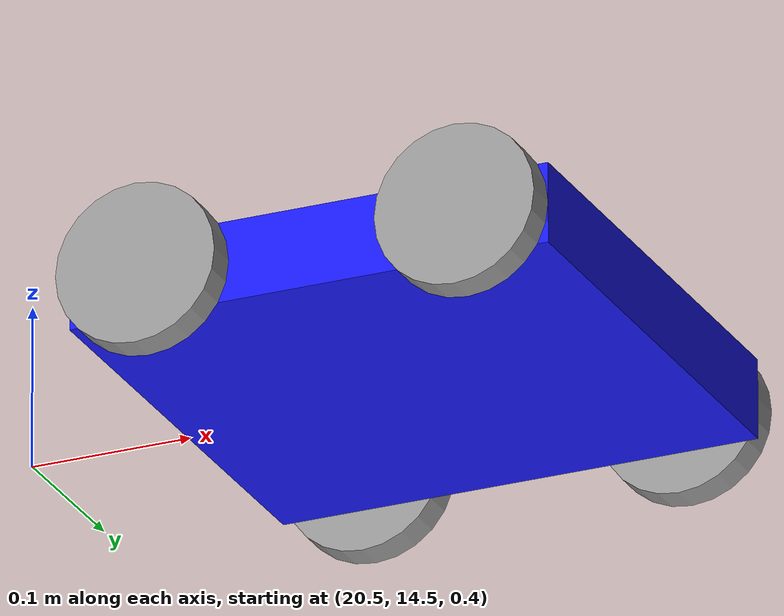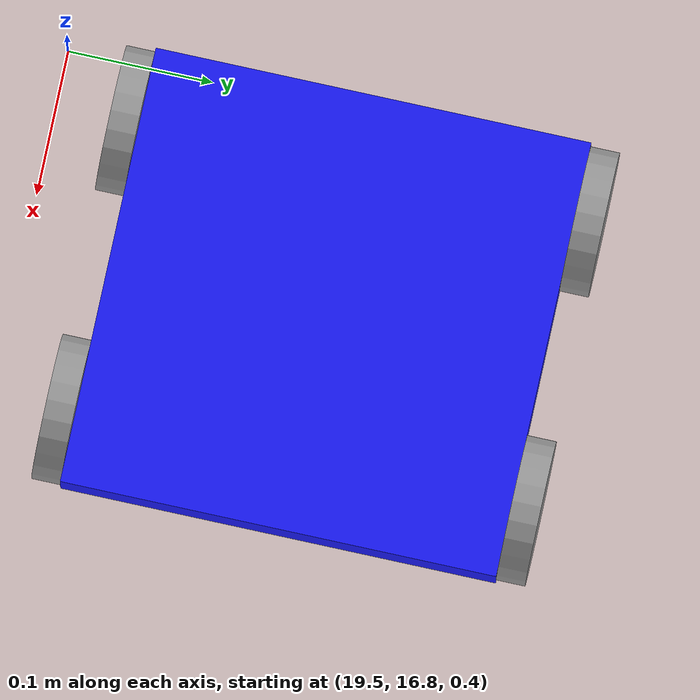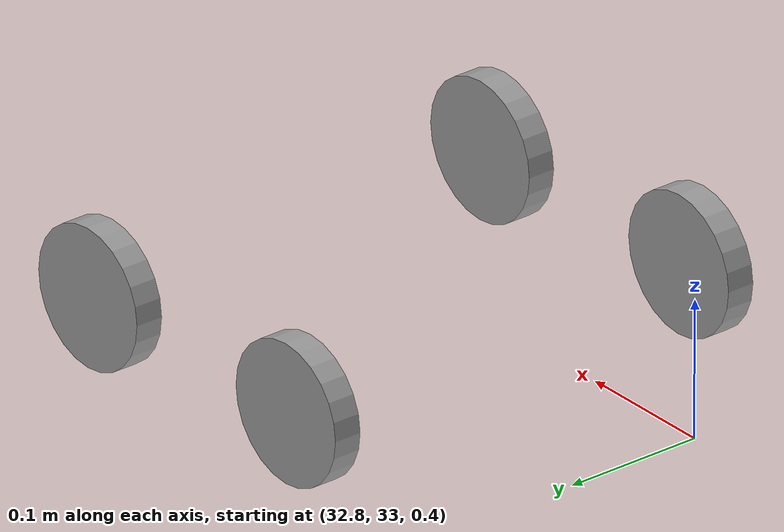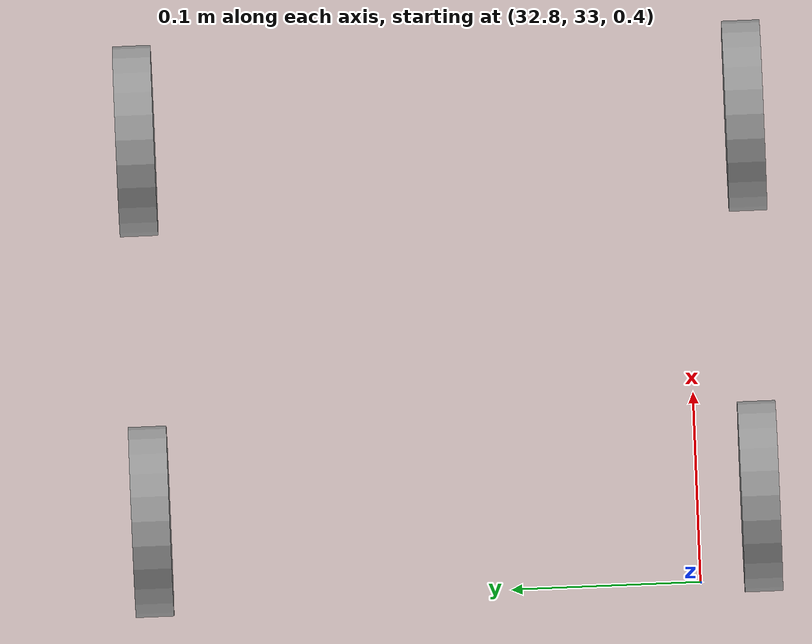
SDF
<?xml version='1.0'?>
<sdf version='1.6'>
  <model name='robot1'>
    <link name='link_5'>
      <pose frame=''>32.8439 32.9677 0.5 1.5707 -0 0</pose>
      <inertial>
        <mass>1</mass>
        <inertia>
          <ixx>0.145833</ixx>
          <ixy>0</ixy>
          <ixz>0</ixz>
          <iyy>0.145833</iyy>
          <iyz>0</iyz>
          <izz>0.125</izz>
        </inertia>
        <pose frame=''>0 0 0 0 -0 0</pose>
      </inertial>
      <gravity>1</gravity>
      <self_collide>0</self_collide>
      <kinematic>0</kinematic>
      <visual name='visual'>
        <pose frame=''>0 0 0 0 -0 0</pose>
        <geometry>
          <cylinder>
            <radius>0.05</radius>
            <length>0.02</length>
          </cylinder>
        </geometry>
        <material>
          <lighting>1</lighting>
          <script>
            <uri>file://media/materials/scripts/gazebo.material</uri>
            <name>Gazebo/Grey</name>
          </script>
          <shader type='pixel'>
            <normal_map>__default__</normal_map>
          </shader>
          <ambient>0.3 0.3 0.3 1</ambient>
          <diffuse>0.7 0.7 0.7 1</diffuse>
          <specular>0.01 0.01 0.01 1</specular>
          <emissive>0 0 0 1</emissive>
        </material>
        <transparency>0</transparency>
        <cast_shadows>1</cast_shadows>
      </visual>
      <collision name='collision'>
        <laser_retro>0</laser_retro>
        <max_contacts>10</max_contacts>
        <pose frame=''>0 0 0 0 -0 0</pose>
        <geometry>
          <cylinder>
            <radius>0.05</radius>
            <length>0.02</length>
          </cylinder>
        </geometry>
        <surface>
          <friction>
            <ode>
              <mu>1</mu>
              <mu2>1</mu2>
              <fdir1>0 0 0</fdir1>
              <slip1>0</slip1>
              <slip2>0</slip2>
            </ode>
            <torsional>
              <coefficient>1</coefficient>
              <patch_radius>0</patch_radius>
              <surface_radius>0</surface_radius>
              <use_patch_radius>1</use_patch_radius>
              <ode>
                <slip>0</slip>
              </ode>
            </torsional>
          </friction>
          <bounce>
            <restitution_coefficient>0</restitution_coefficient>
            <threshold>1e+06</threshold>
          </bounce>
          <contact>
            <collide_without_contact>0</collide_without_contact>
            <collide_without_contact_bitmask>1</collide_without_contact_bitmask>
            <collide_bitmask>1</collide_bitmask>
            <ode>
              <soft_cfm>0</soft_cfm>
              <soft_erp>0.2</soft_erp>
              <kp>1e+13</kp>
              <kd>1</kd>
              <max_vel>0.01</max_vel>
              <min_depth>0</min_depth>
            </ode>
            <bullet>
              <split_impulse>1</split_impulse>
              <split_impulse_penetration_threshold>-0.01</split_impulse_penetration_threshold>
              <soft_cfm>0</soft_cfm>
              <soft_erp>0.2</soft_erp>
              <kp>1e+13</kp>
              <kd>1</kd>
            </bullet>
          </contact>
        </surface>
      </collision>
    </link>
    <link name='link_5_clone'>
      <pose frame=''>32.8439 33.2877 0.5 1.5707 -0 0</pose>
      <inertial>
        <mass>1</mass>
        <inertia>
          <ixx>0.145833</ixx>
          <ixy>0</ixy>
          <ixz>0</ixz>
          <iyy>0.145833</iyy>
          <iyz>0</iyz>
          <izz>0.125</izz>
        </inertia>
        <pose frame=''>0 0 0 0 -0 0</pose>
      </inertial>
      <self_collide>0</self_collide>
      <kinematic>0</kinematic>
      <visual name='visual'>
        <pose frame=''>0 0 0 0 -0 0</pose>
        <geometry>
          <cylinder>
            <radius>0.05</radius>
            <length>0.02</length>
          </cylinder>
        </geometry>
        <material>
          <lighting>1</lighting>
          <script>
            <uri>file://media/materials/scripts/gazebo.material</uri>
            <name>Gazebo/Grey</name>
          </script>
          <shader type='pixel'>
            <normal_map>__default__</normal_map>
          </shader>
          <ambient>0.3 0.3 0.3 1</ambient>
          <diffuse>0.7 0.7 0.7 1</diffuse>
          <specular>0.01 0.01 0.01 1</specular>
          <emissive>0 0 0 1</emissive>
        </material>
        <transparency>0</transparency>
        <cast_shadows>1</cast_shadows>
      </visual>
      <collision name='collision'>
        <laser_retro>0</laser_retro>
        <max_contacts>10</max_contacts>
        <pose frame=''>0 0 0 0 -0 0</pose>
        <geometry>
          <cylinder>
            <radius>0.05</radius>
            <length>0.02</length>
          </cylinder>
        </geometry>
        <surface>
          <friction>
            <ode>
              <mu>1</mu>
              <mu2>1</mu2>
              <fdir1>0 0 0</fdir1>
              <slip1>0</slip1>
              <slip2>0</slip2>
            </ode>
            <torsional>
              <coefficient>1</coefficient>
              <patch_radius>0</patch_radius>
              <surface_radius>0</surface_radius>
              <use_patch_radius>1</use_patch_radius>
              <ode>
                <slip>0</slip>
              </ode>
            </torsional>
          </friction>
          <bounce>
            <restitution_coefficient>0</restitution_coefficient>
            <threshold>1e+06</threshold>
          </bounce>
          <contact>
            <collide_without_contact>0</collide_without_contact>
            <collide_without_contact_bitmask>1</collide_without_contact_bitmask>
            <collide_bitmask>1</collide_bitmask>
            <ode>
              <soft_cfm>0</soft_cfm>
              <soft_erp>0.2</soft_erp>
              <kp>1e+13</kp>
              <kd>1</kd>
              <max_vel>0.01</max_vel>
              <min_depth>0</min_depth>
            </ode>
            <bullet>
              <split_impulse>1</split_impulse>
              <split_impulse_penetration_threshold>-0.01</split_impulse_penetration_threshold>
              <soft_cfm>0</soft_cfm>
              <soft_erp>0.2</soft_erp>
              <kp>1e+13</kp>
              <kd>1</kd>
            </bullet>
          </contact>
        </surface>
      </collision>
    </link>
    <link name='link_5_clone_0'>
      <pose frame=''>33.0439 32.9677 0.5 1.5707 -0 0</pose>
      <inertial>
        <mass>1</mass>
        <inertia>
          <ixx>0.145833</ixx>
          <ixy>0</ixy>
          <ixz>0</ixz>
          <iyy>0.145833</iyy>
          <iyz>0</iyz>
          <izz>0.125</izz>
        </inertia>
        <pose frame=''>0 0 0 0 -0 0</pose>
      </inertial>
      <self_collide>0</self_collide>
      <kinematic>0</kinematic>
      <visual name='visual'>
        <pose frame=''>0 0 0 0 -0 0</pose>
        <geometry>
          <cylinder>
            <radius>0.05</radius>
            <length>0.02</length>
          </cylinder>
        </geometry>
        <material>
          <lighting>1</lighting>
          <script>
            <uri>file://media/materials/scripts/gazebo.material</uri>
            <name>Gazebo/Grey</name>
          </script>
          <shader type='pixel'>
            <normal_map>__default__</normal_map>
          </shader>
          <ambient>0.3 0.3 0.3 1</ambient>
          <diffuse>0.7 0.7 0.7 1</diffuse>
          <specular>0.01 0.01 0.01 1</specular>
          <emissive>0 0 0 1</emissive>
        </material>
        <transparency>0</transparency>
        <cast_shadows>1</cast_shadows>
      </visual>
      <collision name='collision'>
        <laser_retro>0</laser_retro>
        <max_contacts>10</max_contacts>
        <pose frame=''>0 0 0 0 -0 0</pose>
        <geometry>
          <cylinder>
            <radius>0.05</radius>
            <length>0.02</length>
          </cylinder>
        </geometry>
        <surface>
          <friction>
            <ode>
              <mu>1</mu>
              <mu2>1</mu2>
              <fdir1>0 0 0</fdir1>
              <slip1>0</slip1>
              <slip2>0</slip2>
            </ode>
            <torsional>
              <coefficient>1</coefficient>
              <patch_radius>0</patch_radius>
              <surface_radius>0</surface_radius>
              <use_patch_radius>1</use_patch_radius>
              <ode>
                <slip>0</slip>
              </ode>
            </torsional>
          </friction>
          <bounce>
            <restitution_coefficient>0</restitution_coefficient>
            <threshold>1e+06</threshold>
          </bounce>
          <contact>
            <collide_without_contact>0</collide_without_contact>
            <collide_without_contact_bitmask>1</collide_without_contact_bitmask>
            <collide_bitmask>1</collide_bitmask>
            <ode>
              <soft_cfm>0</soft_cfm>
              <soft_erp>0.2</soft_erp>
              <kp>1e+13</kp>
              <kd>1</kd>
              <max_vel>0.01</max_vel>
              <min_depth>0</min_depth>
            </ode>
            <bullet>
              <split_impulse>1</split_impulse>
              <split_impulse_penetration_threshold>-0.01</split_impulse_penetration_threshold>
              <soft_cfm>0</soft_cfm>
              <soft_erp>0.2</soft_erp>
              <kp>1e+13</kp>
              <kd>1</kd>
            </bullet>
          </contact>
        </surface>
      </collision>
    </link>
    <link name='link_5_clone_1'>
      <pose frame=''>33.0439 33.2877 0.5 1.5707 -0 0</pose>
      <inertial>
        <mass>1</mass>
        <inertia>
          <ixx>0.145833</ixx>
          <ixy>0</ixy>
          <ixz>0</ixz>
          <iyy>0.145833</iyy>
          <iyz>0</iyz>
          <izz>0.125</izz>
        </inertia>
        <pose frame=''>0 0 0 0 -0 0</pose>
      </inertial>
      <self_collide>0</self_collide>
      <kinematic>0</kinematic>
      <visual name='visual'>
        <pose frame=''>0 0 0 0 -0 0</pose>
        <geometry>
          <cylinder>
            <radius>0.05</radius>
            <length>0.02</length>
          </cylinder>
        </geometry>
        <material>
          <lighting>1</lighting>
          <script>
            <uri>file://media/materials/scripts/gazebo.material</uri>
            <name>Gazebo/Grey</name>
          </script>
          <shader type='pixel'>
            <normal_map>__default__</normal_map>
          </shader>
          <ambient>0.3 0.3 0.3 1</ambient>
          <diffuse>0.7 0.7 0.7 1</diffuse>
          <specular>0.01 0.01 0.01 1</specular>
          <emissive>0 0 0 1</emissive>
        </material>
        <transparency>0</transparency>
        <cast_shadows>1</cast_shadows>
      </visual>
      <collision name='collision'>
        <laser_retro>0</laser_retro>
        <max_contacts>10</max_contacts>
        <pose frame=''>0 0 0 0 -0 0</pose>
        <geometry>
          <cylinder>
            <radius>0.05</radius>
            <length>0.02</length>
          </cylinder>
        </geometry>
        <surface>
          <friction>
            <ode>
              <mu>1</mu>
              <mu2>1</mu2>
              <fdir1>0 0 0</fdir1>
              <slip1>0</slip1>
              <slip2>0</slip2>
            </ode>
            <torsional>
              <coefficient>1</coefficient>
              <patch_radius>0</patch_radius>
              <surface_radius>0</surface_radius>
              <use_patch_radius>1</use_patch_radius>
              <ode>
                <slip>0</slip>
              </ode>
            </torsional>
          </friction>
          <bounce>
            <restitution_coefficient>0</restitution_coefficient>
            <threshold>1e+06</threshold>
          </bounce>
          <contact>
            <collide_without_contact>0</collide_without_contact>
            <collide_without_contact_bitmask>1</collide_without_contact_bitmask>
            <collide_bitmask>1</collide_bitmask>
            <ode>
              <soft_cfm>0</soft_cfm>
              <soft_erp>0.2</soft_erp>
              <kp>1e+13</kp>
              <kd>1</kd>
              <max_vel>0.01</max_vel>
              <min_depth>0</min_depth>
            </ode>
            <bullet>
              <split_impulse>1</split_impulse>
              <split_impulse_penetration_threshold>-0.01</split_impulse_penetration_threshold>
              <soft_cfm>0</soft_cfm>
              <soft_erp>0.2</soft_erp>
              <kp>1e+13</kp>
              <kd>1</kd>
            </bullet>
          </contact>
        </surface>
      </collision>
    </link>
    <model name='robot1'>
      <link name='link_4'>
        <pose frame=''>-0 0 0 0 -0 0</pose>
        <inertial>
          <mass>1</mass>
          <inertia>
            <ixx>0.166667</ixx>
            <ixy>0</ixy>
            <ixz>0</ixz>
            <iyy>0.166667</iyy>
            <iyz>0</iyz>
            <izz>0.166667</izz>
          </inertia>
          <pose frame=''>0 0 0 0 -0 0</pose>
        </inertial>
        <gravity>1</gravity>
        <self_collide>0</self_collide>
        <kinematic>0</kinematic>
        <visual name='visual'>
          <pose frame=''>0 0 0 0 -0 0</pose>
          <geometry>
            <box>
              <size>0.3 0.3 0.05</size>
            </box>
          </geometry>
          <material>
            <lighting>1</lighting>
            <script>
              <uri>file://media/materials/scripts/gazebo.material</uri>
              <name>Gazebo/Grey</name>
            </script>
            <shader type='pixel'>
              <normal_map>__default__</normal_map>
            </shader>
            <ambient>0.1 0.1 1 1</ambient>
            <diffuse>0.1 0.1 1 1</diffuse>
            <specular>0.01 0.01 1 1</specular>
            <emissive>0 0 1 1</emissive>
          </material>
          <transparency>0</transparency>
          <cast_shadows>1</cast_shadows>
        </visual>
        <collision name='collision'>
          <laser_retro>0</laser_retro>
          <max_contacts>10</max_contacts>
          <pose frame=''>0 0 0 0 -0 0</pose>
          <geometry>
            <box>
              <size>0.3 0.3 0.05</size>
            </box>
          </geometry>
          <surface>
            <friction>
              <ode>
                <mu>1</mu>
                <mu2>1</mu2>
                <fdir1>0 0 0</fdir1>
                <slip1>0</slip1>
                <slip2>0</slip2>
              </ode>
              <torsional>
                <coefficient>1</coefficient>
                <patch_radius>0</patch_radius>
                <surface_radius>0</surface_radius>
                <use_patch_radius>1</use_patch_radius>
                <ode>
                  <slip>0</slip>
                </ode>
              </torsional>
            </friction>
            <bounce>
              <restitution_coefficient>0</restitution_coefficient>
              <threshold>1e+06</threshold>
            </bounce>
            <contact>
              <collide_without_contact>0</collide_without_contact>
              <collide_without_contact_bitmask>1</collide_without_contact_bitmask>
              <collide_bitmask>1</collide_bitmask>
              <ode>
                <soft_cfm>0</soft_cfm>
                <soft_erp>0.2</soft_erp>
                <kp>1e+13</kp>
                <kd>1</kd>
                <max_vel>0.01</max_vel>
                <min_depth>0</min_depth>
              </ode>
              <bullet>
                <split_impulse>1</split_impulse>
                <split_impulse_penetration_threshold>-0.01</split_impulse_penetration_threshold>
                <soft_cfm>0</soft_cfm>
                <soft_erp>0.2</soft_erp>
                <kp>1e+13</kp>
                <kd>1</kd>
              </bullet>
            </contact>
          </surface>
        </collision>
      </link>
      <link name='link_5'>
        <pose frame=''>-0.100001 -0.160013 0 1.5707 -0 0</pose>
        <inertial>
          <mass>1</mass>
          <inertia>
            <ixx>0.145833</ixx>
            <ixy>0</ixy>
            <ixz>0</ixz>
            <iyy>0.145833</iyy>
            <iyz>0</iyz>
            <izz>0.125</izz>
          </inertia>
          <pose frame=''>0 0 0 0 -0 0</pose>
        </inertial>
        <gravity>1</gravity>
        <self_collide>0</self_collide>
        <kinematic>0</kinematic>
        <visual name='visual'>
          <pose frame=''>0 0 0 0 -0 0</pose>
          <geometry>
            <cylinder>
              <radius>0.05</radius>
              <length>0.02</length>
            </cylinder>
          </geometry>
          <material>
            <lighting>1</lighting>
            <script>
              <uri>file://media/materials/scripts/gazebo.material</uri>
              <name>Gazebo/Grey</name>
            </script>
            <shader type='pixel'>
              <normal_map>__default__</normal_map>
            </shader>
            <ambient>0.3 0.3 0.3 1</ambient>
            <diffuse>0.7 0.7 0.7 1</diffuse>
            <specular>0.01 0.01 0.01 1</specular>
            <emissive>0 0 0 1</emissive>
          </material>
          <transparency>0</transparency>
          <cast_shadows>1</cast_shadows>
        </visual>
        <collision name='collision'>
          <laser_retro>0</laser_retro>
          <max_contacts>10</max_contacts>
          <pose frame=''>0 0 0 0 -0 0</pose>
          <geometry>
            <cylinder>
              <radius>0.05</radius>
              <length>0.02</length>
            </cylinder>
          </geometry>
          <surface>
            <friction>
              <ode>
                <mu>1</mu>
                <mu2>1</mu2>
                <fdir1>0 0 0</fdir1>
                <slip1>0</slip1>
                <slip2>0</slip2>
              </ode>
              <torsional>
                <coefficient>1</coefficient>
                <patch_radius>0</patch_radius>
                <surface_radius>0</surface_radius>
                <use_patch_radius>1</use_patch_radius>
                <ode>
                  <slip>0</slip>
                </ode>
              </torsional>
            </friction>
            <bounce>
              <restitution_coefficient>0</restitution_coefficient>
              <threshold>1e+06</threshold>
            </bounce>
            <contact>
              <collide_without_contact>0</collide_without_contact>
              <collide_without_contact_bitmask>1</collide_without_contact_bitmask>
              <collide_bitmask>1</collide_bitmask>
              <ode>
                <soft_cfm>0</soft_cfm>
                <soft_erp>0.2</soft_erp>
                <kp>1e+13</kp>
                <kd>1</kd>
                <max_vel>0.01</max_vel>
                <min_depth>0</min_depth>
              </ode>
              <bullet>
                <split_impulse>1</split_impulse>
                <split_impulse_penetration_threshold>-0.01</split_impulse_penetration_threshold>
                <soft_cfm>0</soft_cfm>
                <soft_erp>0.2</soft_erp>
                <kp>1e+13</kp>
                <kd>1</kd>
              </bullet>
            </contact>
          </surface>
        </collision>
      </link>
      <link name='link_5_clone'>
        <pose frame=''>-0.100001 0.160006 0 1.5707 -0 0</pose>
        <inertial>
          <mass>1</mass>
          <inertia>
            <ixx>0.145833</ixx>
            <ixy>0</ixy>
            <ixz>0</ixz>
            <iyy>0.145833</iyy>
            <iyz>0</iyz>
            <izz>0.125</izz>
          </inertia>
          <pose frame=''>0 0 0 0 -0 0</pose>
        </inertial>
        <self_collide>0</self_collide>
        <kinematic>0</kinematic>
        <visual name='visual'>
          <pose frame=''>0 0 0 0 -0 0</pose>
          <geometry>
            <cylinder>
              <radius>0.05</radius>
              <length>0.02</length>
            </cylinder>
          </geometry>
          <material>
            <lighting>1</lighting>
            <script>
              <uri>file://media/materials/scripts/gazebo.material</uri>
              <name>Gazebo/Grey</name>
            </script>
            <shader type='pixel'>
              <normal_map>__default__</normal_map>
            </shader>
            <ambient>0.3 0.3 0.3 1</ambient>
            <diffuse>0.7 0.7 0.7 1</diffuse>
            <specular>0.01 0.01 0.01 1</specular>
            <emissive>0 0 0 1</emissive>
          </material>
          <transparency>0</transparency>
          <cast_shadows>1</cast_shadows>
        </visual>
        <collision name='collision'>
          <laser_retro>0</laser_retro>
          <max_contacts>10</max_contacts>
          <pose frame=''>0 0 0 0 -0 0</pose>
          <geometry>
            <cylinder>
              <radius>0.05</radius>
              <length>0.02</length>
            </cylinder>
          </geometry>
          <surface>
            <friction>
              <ode>
                <mu>1</mu>
                <mu2>1</mu2>
                <fdir1>0 0 0</fdir1>
                <slip1>0</slip1>
                <slip2>0</slip2>
              </ode>
              <torsional>
                <coefficient>1</coefficient>
                <patch_radius>0</patch_radius>
                <surface_radius>0</surface_radius>
                <use_patch_radius>1</use_patch_radius>
                <ode>
                  <slip>0</slip>
                </ode>
              </torsional>
            </friction>
            <bounce>
              <restitution_coefficient>0</restitution_coefficient>
              <threshold>1e+06</threshold>
            </bounce>
            <contact>
              <collide_without_contact>0</collide_without_contact>
              <collide_without_contact_bitmask>1</collide_without_contact_bitmask>
              <collide_bitmask>1</collide_bitmask>
              <ode>
                <soft_cfm>0</soft_cfm>
                <soft_erp>0.2</soft_erp>
                <kp>1e+13</kp>
                <kd>1</kd>
                <max_vel>0.01</max_vel>
                <min_depth>0</min_depth>
              </ode>
              <bullet>
                <split_impulse>1</split_impulse>
                <split_impulse_penetration_threshold>-0.01</split_impulse_penetration_threshold>
                <soft_cfm>0</soft_cfm>
                <soft_erp>0.2</soft_erp>
                <kp>1e+13</kp>
                <kd>1</kd>
              </bullet>
            </contact>
          </surface>
        </collision>
      </link>
      <link name='link_5_clone_0'>
        <pose frame=''>0.1 -0.160006 0 1.5707 -0 0</pose>
        <inertial>
          <mass>1</mass>
          <inertia>
            <ixx>0.145833</ixx>
            <ixy>0</ixy>
            <ixz>0</ixz>
            <iyy>0.145833</iyy>
            <iyz>0</iyz>
            <izz>0.125</izz>
          </inertia>
          <pose frame=''>0 0 0 0 -0 0</pose>
        </inertial>
        <self_collide>0</self_collide>
        <kinematic>0</kinematic>
        <visual name='visual'>
          <pose frame=''>0 0 0 0 -0 0</pose>
          <geometry>
            <cylinder>
              <radius>0.05</radius>
              <length>0.02</length>
            </cylinder>
          </geometry>
          <material>
            <lighting>1</lighting>
            <script>
              <uri>file://media/materials/scripts/gazebo.material</uri>
              <name>Gazebo/Grey</name>
            </script>
            <shader type='pixel'>
              <normal_map>__default__</normal_map>
            </shader>
            <ambient>0.3 0.3 0.3 1</ambient>
            <diffuse>0.7 0.7 0.7 1</diffuse>
            <specular>0.01 0.01 0.01 1</specular>
            <emissive>0 0 0 1</emissive>
          </material>
          <transparency>0</transparency>
          <cast_shadows>1</cast_shadows>
        </visual>
        <collision name='collision'>
          <laser_retro>0</laser_retro>
          <max_contacts>10</max_contacts>
          <pose frame=''>0 0 0 0 -0 0</pose>
          <geometry>
            <cylinder>
              <radius>0.05</radius>
              <length>0.02</length>
            </cylinder>
          </geometry>
          <surface>
            <friction>
              <ode>
                <mu>1</mu>
                <mu2>1</mu2>
                <fdir1>0 0 0</fdir1>
                <slip1>0</slip1>
                <slip2>0</slip2>
              </ode>
              <torsional>
                <coefficient>1</coefficient>
                <patch_radius>0</patch_radius>
                <surface_radius>0</surface_radius>
                <use_patch_radius>1</use_patch_radius>
                <ode>
                  <slip>0</slip>
                </ode>
              </torsional>
            </friction>
            <bounce>
              <restitution_coefficient>0</restitution_coefficient>
              <threshold>1e+06</threshold>
            </bounce>
            <contact>
              <collide_without_contact>0</collide_without_contact>
              <collide_without_contact_bitmask>1</collide_without_contact_bitmask>
              <collide_bitmask>1</collide_bitmask>
              <ode>
                <soft_cfm>0</soft_cfm>
                <soft_erp>0.2</soft_erp>
                <kp>1e+13</kp>
                <kd>1</kd>
                <max_vel>0.01</max_vel>
                <min_depth>0</min_depth>
              </ode>
              <bullet>
                <split_impulse>1</split_impulse>
                <split_impulse_penetration_threshold>-0.01</split_impulse_penetration_threshold>
                <soft_cfm>0</soft_cfm>
                <soft_erp>0.2</soft_erp>
                <kp>1e+13</kp>
                <kd>1</kd>
              </bullet>
            </contact>
          </surface>
        </collision>
      </link>
      <link name='link_5_clone_1'>
        <pose frame=''>0.1 0.160006 0 1.5707 -0 0</pose>
        <inertial>
          <mass>1</mass>
          <inertia>
            <ixx>0.145833</ixx>
            <ixy>0</ixy>
            <ixz>0</ixz>
            <iyy>0.145833</iyy>
            <iyz>0</iyz>
            <izz>0.125</izz>
          </inertia>
          <pose frame=''>0 0 0 0 -0 0</pose>
        </inertial>
        <self_collide>0</self_collide>
        <kinematic>0</kinematic>
        <visual name='visual'>
          <pose frame=''>0 0 0 0 -0 0</pose>
          <geometry>
            <cylinder>
              <radius>0.05</radius>
              <length>0.02</length>
            </cylinder>
          </geometry>
          <material>
            <lighting>1</lighting>
            <script>
              <uri>file://media/materials/scripts/gazebo.material</uri>
              <name>Gazebo/Grey</name>
            </script>
            <shader type='pixel'>
              <normal_map>__default__</normal_map>
            </shader>
            <ambient>0.3 0.3 0.3 1</ambient>
            <diffuse>0.7 0.7 0.7 1</diffuse>
            <specular>0.01 0.01 0.01 1</specular>
            <emissive>0 0 0 1</emissive>
          </material>
          <transparency>0</transparency>
          <cast_shadows>1</cast_shadows>
        </visual>
        <collision name='collision'>
          <laser_retro>0</laser_retro>
          <max_contacts>10</max_contacts>
          <pose frame=''>0 0 0 0 -0 0</pose>
          <geometry>
            <cylinder>
              <radius>0.05</radius>
              <length>0.02</length>
            </cylinder>
          </geometry>
          <surface>
            <friction>
              <ode>
                <mu>1</mu>
                <mu2>1</mu2>
                <fdir1>0 0 0</fdir1>
                <slip1>0</slip1>
                <slip2>0</slip2>
              </ode>
              <torsional>
                <coefficient>1</coefficient>
                <patch_radius>0</patch_radius>
                <surface_radius>0</surface_radius>
                <use_patch_radius>1</use_patch_radius>
                <ode>
                  <slip>0</slip>
                </ode>
              </torsional>
            </friction>
            <bounce>
              <restitution_coefficient>0</restitution_coefficient>
              <threshold>1e+06</threshold>
            </bounce>
            <contact>
              <collide_without_contact>0</collide_without_contact>
              <collide_without_contact_bitmask>1</collide_without_contact_bitmask>
              <collide_bitmask>1</collide_bitmask>
              <ode>
                <soft_cfm>0</soft_cfm>
                <soft_erp>0.2</soft_erp>
                <kp>1e+13</kp>
                <kd>1</kd>
                <max_vel>0.01</max_vel>
                <min_depth>0</min_depth>
              </ode>
              <bullet>
                <split_impulse>1</split_impulse>
                <split_impulse_penetration_threshold>-0.01</split_impulse_penetration_threshold>
                <soft_cfm>0</soft_cfm>
                <soft_erp>0.2</soft_erp>
                <kp>1e+13</kp>
                <kd>1</kd>
              </bullet>
            </contact>
          </surface>
        </collision>
      </link>
      <joint name='link_4_JOINT_0' type='revolute'>
        <parent>link_4</parent>
        <child>link_5</child>
        <pose frame=''>0 0 0 -0.03 0 0</pose>
        <axis>
          <xyz>0 0 1</xyz>
          <use_parent_model_frame>0</use_parent_model_frame>
          <limit>
            <lower>-1.79769e+308</lower>
            <upper>1.79769e+308</upper>
            <effort>-1</effort>
            <velocity>-1</velocity>
          </limit>
          <dynamics>
            <spring_reference>0</spring_reference>
            <spring_stiffness>0</spring_stiffness>
            <damping>0</damping>
            <friction>0</friction>
          </dynamics>
        </axis>
        <physics>
          <ode>
            <limit>
              <cfm>0</cfm>
              <erp>0.2</erp>
            </limit>
            <suspension>
              <cfm>0</cfm>
              <erp>0.2</erp>
            </suspension>
          </ode>
        </physics>
      </joint>
      <joint name='link_4_JOINT_1' type='revolute'>
        <parent>link_4</parent>
        <child>link_5_clone</child>
        <pose frame=''>0 0 0 0 -0 0</pose>
        <axis>
          <xyz>0 0 1</xyz>
          <use_parent_model_frame>0</use_parent_model_frame>
          <limit>
            <lower>-1.79769e+308</lower>
            <upper>1.79769e+308</upper>
            <effort>-1</effort>
            <velocity>-1</velocity>
          </limit>
          <dynamics>
            <spring_reference>0</spring_reference>
            <spring_stiffness>0</spring_stiffness>
            <damping>0</damping>
            <friction>0</friction>
          </dynamics>
        </axis>
        <physics>
          <ode>
            <limit>
              <cfm>0</cfm>
              <erp>0.2</erp>
            </limit>
            <suspension>
              <cfm>0</cfm>
              <erp>0.2</erp>
            </suspension>
          </ode>
        </physics>
      </joint>
      <joint name='link_4_JOINT_2' type='revolute'>
        <parent>link_4</parent>
        <child>link_5_clone_1</child>
        <pose frame=''>0 0 0 0 -0 0</pose>
        <axis>
          <xyz>0 0 1</xyz>
          <use_parent_model_frame>0</use_parent_model_frame>
          <limit>
            <lower>-1.79769e+308</lower>
            <upper>1.79769e+308</upper>
            <effort>-1</effort>
            <velocity>-1</velocity>
          </limit>
          <dynamics>
            <spring_reference>0</spring_reference>
            <spring_stiffness>0</spring_stiffness>
            <damping>0</damping>
            <friction>0</friction>
          </dynamics>
        </axis>
        <physics>
          <ode>
            <limit>
              <cfm>0</cfm>
              <erp>0.2</erp>
            </limit>
            <suspension>
              <cfm>0</cfm>
              <erp>0.2</erp>
            </suspension>
          </ode>
        </physics>
      </joint>
      <joint name='link_4_JOINT_3' type='revolute'>
        <parent>link_4</parent>
        <child>link_5_clone_0</child>
        <pose frame=''>0 0 0 0 -0 0</pose>
        <axis>
          <xyz>0 0 1</xyz>
          <use_parent_model_frame>0</use_parent_model_frame>
          <limit>
            <lower>-1.79769e+308</lower>
            <upper>1.79769e+308</upper>
            <effort>-1</effort>
            <velocity>-1</velocity>
          </limit>
          <dynamics>
            <spring_reference>0</spring_reference>
            <spring_stiffness>0</spring_stiffness>
            <damping>0</damping>
            <friction>0</friction>
          </dynamics>
        </axis>
        <physics>
          <ode>
            <limit>
              <cfm>0</cfm>
              <erp>0.2</erp>
            </limit>
            <suspension>
              <cfm>0</cfm>
              <erp>0.2</erp>
            </suspension>
          </ode>
        </physics>
      </joint>
      <static>0</static>
      <allow_auto_disable>1</allow_auto_disable>
      <pose frame=''>20.6795 14.6359 0.5 0 -0 0</pose>
    </model>
    <model name='robot1_0'>
      <link name='link_4'>
        <pose frame=''>-0 0 0 0 -0 0</pose>
        <inertial>
          <mass>1</mass>
          <inertia>
            <ixx>0.166667</ixx>
            <ixy>0</ixy>
            <ixz>0</ixz>
            <iyy>0.166667</iyy>
            <iyz>0</iyz>
            <izz>0.166667</izz>
          </inertia>
          <pose frame=''>0 0 0 0 -0 0</pose>
        </inertial>
        <gravity>1</gravity>
        <self_collide>0</self_collide>
        <kinematic>0</kinematic>
        <visual name='visual'>
          <pose frame=''>0 0 0 0 -0 0</pose>
          <geometry>
            <box>
              <size>0.3 0.3 0.05</size>
            </box>
          </geometry>
          <material>
            <lighting>1</lighting>
            <script>
              <uri>file://media/materials/scripts/gazebo.material</uri>
              <name>Gazebo/Grey</name>
            </script>
            <shader type='pixel'>
              <normal_map>__default__</normal_map>
            </shader>
            <ambient>0.1 0.1 1 1</ambient>
            <diffuse>0.1 0.1 1 1</diffuse>
            <specular>0.01 0.01 1 1</specular>
            <emissive>0 0 1 1</emissive>
          </material>
          <transparency>0</transparency>
          <cast_shadows>1</cast_shadows>
        </visual>
        <collision name='collision'>
          <laser_retro>0</laser_retro>
          <max_contacts>10</max_contacts>
          <pose frame=''>0 0 0 0 -0 0</pose>
          <geometry>
            <box>
              <size>0.3 0.3 0.05</size>
            </box>
          </geometry>
          <surface>
            <friction>
              <ode>
                <mu>1</mu>
                <mu2>1</mu2>
                <fdir1>0 0 0</fdir1>
                <slip1>0</slip1>
                <slip2>0</slip2>
              </ode>
              <torsional>
                <coefficient>1</coefficient>
                <patch_radius>0</patch_radius>
                <surface_radius>0</surface_radius>
                <use_patch_radius>1</use_patch_radius>
                <ode>
                  <slip>0</slip>
                </ode>
              </torsional>
            </friction>
            <bounce>
              <restitution_coefficient>0</restitution_coefficient>
              <threshold>1e+06</threshold>
            </bounce>
            <contact>
              <collide_without_contact>0</collide_without_contact>
              <collide_without_contact_bitmask>1</collide_without_contact_bitmask>
              <collide_bitmask>1</collide_bitmask>
              <ode>
                <soft_cfm>0</soft_cfm>
                <soft_erp>0.2</soft_erp>
                <kp>1e+13</kp>
                <kd>1</kd>
                <max_vel>0.01</max_vel>
                <min_depth>0</min_depth>
              </ode>
              <bullet>
                <split_impulse>1</split_impulse>
                <split_impulse_penetration_threshold>-0.01</split_impulse_penetration_threshold>
                <soft_cfm>0</soft_cfm>
                <soft_erp>0.2</soft_erp>
                <kp>1e+13</kp>
                <kd>1</kd>
              </bullet>
            </contact>
          </surface>
        </collision>
      </link>
      <link name='link_5'>
        <pose frame=''>-0.100001 -0.160013 0 1.5707 -0 0</pose>
        <inertial>
          <mass>1</mass>
          <inertia>
            <ixx>0.145833</ixx>
            <ixy>0</ixy>
            <ixz>0</ixz>
            <iyy>0.145833</iyy>
            <iyz>0</iyz>
            <izz>0.125</izz>
          </inertia>
          <pose frame=''>0 0 0 0 -0 0</pose>
        </inertial>
        <gravity>1</gravity>
        <self_collide>0</self_collide>
        <kinematic>0</kinematic>
        <visual name='visual'>
          <pose frame=''>0 0 0 0 -0 0</pose>
          <geometry>
            <cylinder>
              <radius>0.05</radius>
              <length>0.02</length>
            </cylinder>
          </geometry>
          <material>
            <lighting>1</lighting>
            <script>
              <uri>file://media/materials/scripts/gazebo.material</uri>
              <name>Gazebo/Grey</name>
            </script>
            <shader type='pixel'>
              <normal_map>__default__</normal_map>
            </shader>
            <ambient>0.3 0.3 0.3 1</ambient>
            <diffuse>0.7 0.7 0.7 1</diffuse>
            <specular>0.01 0.01 0.01 1</specular>
            <emissive>0 0 0 1</emissive>
          </material>
          <transparency>0</transparency>
          <cast_shadows>1</cast_shadows>
        </visual>
        <collision name='collision'>
          <laser_retro>0</laser_retro>
          <max_contacts>10</max_contacts>
          <pose frame=''>0 0 0 0 -0 0</pose>
          <geometry>
            <cylinder>
              <radius>0.05</radius>
              <length>0.02</length>
            </cylinder>
          </geometry>
          <surface>
            <friction>
              <ode>
                <mu>1</mu>
                <mu2>1</mu2>
                <fdir1>0 0 0</fdir1>
                <slip1>0</slip1>
                <slip2>0</slip2>
              </ode>
              <torsional>
                <coefficient>1</coefficient>
                <patch_radius>0</patch_radius>
                <surface_radius>0</surface_radius>
                <use_patch_radius>1</use_patch_radius>
                <ode>
                  <slip>0</slip>
                </ode>
              </torsional>
            </friction>
            <bounce>
              <restitution_coefficient>0</restitution_coefficient>
              <threshold>1e+06</threshold>
            </bounce>
            <contact>
              <collide_without_contact>0</collide_without_contact>
              <collide_without_contact_bitmask>1</collide_without_contact_bitmask>
              <collide_bitmask>1</collide_bitmask>
              <ode>
                <soft_cfm>0</soft_cfm>
                <soft_erp>0.2</soft_erp>
                <kp>1e+13</kp>
                <kd>1</kd>
                <max_vel>0.01</max_vel>
                <min_depth>0</min_depth>
              </ode>
              <bullet>
                <split_impulse>1</split_impulse>
                <split_impulse_penetration_threshold>-0.01</split_impulse_penetration_threshold>
                <soft_cfm>0</soft_cfm>
                <soft_erp>0.2</soft_erp>
                <kp>1e+13</kp>
                <kd>1</kd>
              </bullet>
            </contact>
          </surface>
        </collision>
      </link>
      <link name='link_5_clone'>
        <pose frame=''>-0.100001 0.160006 0 1.5707 -0 0</pose>
        <inertial>
          <mass>1</mass>
          <inertia>
            <ixx>0.145833</ixx>
            <ixy>0</ixy>
            <ixz>0</ixz>
            <iyy>0.145833</iyy>
            <iyz>0</iyz>
            <izz>0.125</izz>
          </inertia>
          <pose frame=''>0 0 0 0 -0 0</pose>
        </inertial>
        <self_collide>0</self_collide>
        <kinematic>0</kinematic>
        <visual name='visual'>
          <pose frame=''>0 0 0 0 -0 0</pose>
          <geometry>
            <cylinder>
              <radius>0.05</radius>
              <length>0.02</length>
            </cylinder>
          </geometry>
          <material>
            <lighting>1</lighting>
            <script>
              <uri>file://media/materials/scripts/gazebo.material</uri>
              <name>Gazebo/Grey</name>
            </script>
            <shader type='pixel'>
              <normal_map>__default__</normal_map>
            </shader>
            <ambient>0.3 0.3 0.3 1</ambient>
            <diffuse>0.7 0.7 0.7 1</diffuse>
            <specular>0.01 0.01 0.01 1</specular>
            <emissive>0 0 0 1</emissive>
          </material>
          <transparency>0</transparency>
          <cast_shadows>1</cast_shadows>
        </visual>
        <collision name='collision'>
          <laser_retro>0</laser_retro>
          <max_contacts>10</max_contacts>
          <pose frame=''>0 0 0 0 -0 0</pose>
          <geometry>
            <cylinder>
              <radius>0.05</radius>
              <length>0.02</length>
            </cylinder>
          </geometry>
          <surface>
            <friction>
              <ode>
                <mu>1</mu>
                <mu2>1</mu2>
                <fdir1>0 0 0</fdir1>
                <slip1>0</slip1>
                <slip2>0</slip2>
              </ode>
              <torsional>
                <coefficient>1</coefficient>
                <patch_radius>0</patch_radius>
                <surface_radius>0</surface_radius>
                <use_patch_radius>1</use_patch_radius>
                <ode>
                  <slip>0</slip>
                </ode>
              </torsional>
            </friction>
            <bounce>
              <restitution_coefficient>0</restitution_coefficient>
              <threshold>1e+06</threshold>
            </bounce>
            <contact>
              <collide_without_contact>0</collide_without_contact>
              <collide_without_contact_bitmask>1</collide_without_contact_bitmask>
              <collide_bitmask>1</collide_bitmask>
              <ode>
                <soft_cfm>0</soft_cfm>
                <soft_erp>0.2</soft_erp>
                <kp>1e+13</kp>
                <kd>1</kd>
                <max_vel>0.01</max_vel>
                <min_depth>0</min_depth>
              </ode>
              <bullet>
                <split_impulse>1</split_impulse>
                <split_impulse_penetration_threshold>-0.01</split_impulse_penetration_threshold>
                <soft_cfm>0</soft_cfm>
                <soft_erp>0.2</soft_erp>
                <kp>1e+13</kp>
                <kd>1</kd>
              </bullet>
            </contact>
          </surface>
        </collision>
      </link>
      <link name='link_5_clone_0'>
        <pose frame=''>0.1 -0.160006 0 1.5707 -0 0</pose>
        <inertial>
          <mass>1</mass>
          <inertia>
            <ixx>0.145833</ixx>
            <ixy>0</ixy>
            <ixz>0</ixz>
            <iyy>0.145833</iyy>
            <iyz>0</iyz>
            <izz>0.125</izz>
          </inertia>
          <pose frame=''>0 0 0 0 -0 0</pose>
        </inertial>
        <self_collide>0</self_collide>
        <kinematic>0</kinematic>
        <visual name='visual'>
          <pose frame=''>0 0 0 0 -0 0</pose>
          <geometry>
            <cylinder>
              <radius>0.05</radius>
              <length>0.02</length>
            </cylinder>
          </geometry>
          <material>
            <lighting>1</lighting>
            <script>
              <uri>file://media/materials/scripts/gazebo.material</uri>
              <name>Gazebo/Grey</name>
            </script>
            <shader type='pixel'>
              <normal_map>__default__</normal_map>
            </shader>
            <ambient>0.3 0.3 0.3 1</ambient>
            <diffuse>0.7 0.7 0.7 1</diffuse>
            <specular>0.01 0.01 0.01 1</specular>
            <emissive>0 0 0 1</emissive>
          </material>
          <transparency>0</transparency>
          <cast_shadows>1</cast_shadows>
        </visual>
        <collision name='collision'>
          <laser_retro>0</laser_retro>
          <max_contacts>10</max_contacts>
          <pose frame=''>0 0 0 0 -0 0</pose>
          <geometry>
            <cylinder>
              <radius>0.05</radius>
              <length>0.02</length>
            </cylinder>
          </geometry>
          <surface>
            <friction>
              <ode>
                <mu>1</mu>
                <mu2>1</mu2>
                <fdir1>0 0 0</fdir1>
                <slip1>0</slip1>
                <slip2>0</slip2>
              </ode>
              <torsional>
                <coefficient>1</coefficient>
                <patch_radius>0</patch_radius>
                <surface_radius>0</surface_radius>
                <use_patch_radius>1</use_patch_radius>
                <ode>
                  <slip>0</slip>
                </ode>
              </torsional>
            </friction>
            <bounce>
              <restitution_coefficient>0</restitution_coefficient>
              <threshold>1e+06</threshold>
            </bounce>
            <contact>
              <collide_without_contact>0</collide_without_contact>
              <collide_without_contact_bitmask>1</collide_without_contact_bitmask>
              <collide_bitmask>1</collide_bitmask>
              <ode>
                <soft_cfm>0</soft_cfm>
                <soft_erp>0.2</soft_erp>
                <kp>1e+13</kp>
                <kd>1</kd>
                <max_vel>0.01</max_vel>
                <min_depth>0</min_depth>
              </ode>
              <bullet>
                <split_impulse>1</split_impulse>
                <split_impulse_penetration_threshold>-0.01</split_impulse_penetration_threshold>
                <soft_cfm>0</soft_cfm>
                <soft_erp>0.2</soft_erp>
                <kp>1e+13</kp>
                <kd>1</kd>
              </bullet>
            </contact>
          </surface>
        </collision>
      </link>
      <link name='link_5_clone_1'>
        <pose frame=''>0.1 0.160006 0 1.5707 -0 0</pose>
        <inertial>
          <mass>1</mass>
          <inertia>
            <ixx>0.145833</ixx>
            <ixy>0</ixy>
            <ixz>0</ixz>
            <iyy>0.145833</iyy>
            <iyz>0</iyz>
            <izz>0.125</izz>
          </inertia>
          <pose frame=''>0 0 0 0 -0 0</pose>
        </inertial>
        <self_collide>0</self_collide>
        <kinematic>0</kinematic>
        <visual name='visual'>
          <pose frame=''>0 0 0 0 -0 0</pose>
          <geometry>
            <cylinder>
              <radius>0.05</radius>
              <length>0.02</length>
            </cylinder>
          </geometry>
          <material>
            <lighting>1</lighting>
            <script>
              <uri>file://media/materials/scripts/gazebo.material</uri>
              <name>Gazebo/Grey</name>
            </script>
            <shader type='pixel'>
              <normal_map>__default__</normal_map>
            </shader>
            <ambient>0.3 0.3 0.3 1</ambient>
            <diffuse>0.7 0.7 0.7 1</diffuse>
            <specular>0.01 0.01 0.01 1</specular>
            <emissive>0 0 0 1</emissive>
          </material>
          <transparency>0</transparency>
          <cast_shadows>1</cast_shadows>
        </visual>
        <collision name='collision'>
          <laser_retro>0</laser_retro>
          <max_contacts>10</max_contacts>
          <pose frame=''>0 0 0 0 -0 0</pose>
          <geometry>
            <cylinder>
              <radius>0.05</radius>
              <length>0.02</length>
            </cylinder>
          </geometry>
          <surface>
            <friction>
              <ode>
                <mu>1</mu>
                <mu2>1</mu2>
                <fdir1>0 0 0</fdir1>
                <slip1>0</slip1>
                <slip2>0</slip2>
              </ode>
              <torsional>
                <coefficient>1</coefficient>
                <patch_radius>0</patch_radius>
                <surface_radius>0</surface_radius>
                <use_patch_radius>1</use_patch_radius>
                <ode>
                  <slip>0</slip>
                </ode>
              </torsional>
            </friction>
            <bounce>
              <restitution_coefficient>0</restitution_coefficient>
              <threshold>1e+06</threshold>
            </bounce>
            <contact>
              <collide_without_contact>0</collide_without_contact>
              <collide_without_contact_bitmask>1</collide_without_contact_bitmask>
              <collide_bitmask>1</collide_bitmask>
              <ode>
                <soft_cfm>0</soft_cfm>
                <soft_erp>0.2</soft_erp>
                <kp>1e+13</kp>
                <kd>1</kd>
                <max_vel>0.01</max_vel>
                <min_depth>0</min_depth>
              </ode>
              <bullet>
                <split_impulse>1</split_impulse>
                <split_impulse_penetration_threshold>-0.01</split_impulse_penetration_threshold>
                <soft_cfm>0</soft_cfm>
                <soft_erp>0.2</soft_erp>
                <kp>1e+13</kp>
                <kd>1</kd>
              </bullet>
            </contact>
          </surface>
        </collision>
      </link>
      <joint name='link_4_JOINT_0' type='revolute'>
        <parent>link_4</parent>
        <child>link_5</child>
        <pose frame=''>0 0 0 -0.03 0 0</pose>
        <axis>
          <xyz>0 0 1</xyz>
          <use_parent_model_frame>0</use_parent_model_frame>
          <limit>
            <lower>-1.79769e+308</lower>
            <upper>1.79769e+308</upper>
            <effort>-1</effort>
            <velocity>-1</velocity>
          </limit>
          <dynamics>
            <spring_reference>0</spring_reference>
            <spring_stiffness>0</spring_stiffness>
            <damping>0</damping>
            <friction>0</friction>
          </dynamics>
        </axis>
        <physics>
          <ode>
            <limit>
              <cfm>0</cfm>
              <erp>0.2</erp>
            </limit>
            <suspension>
              <cfm>0</cfm>
              <erp>0.2</erp>
            </suspension>
          </ode>
        </physics>
      </joint>
      <joint name='link_4_JOINT_1' type='revolute'>
        <parent>link_4</parent>
        <child>link_5_clone</child>
        <pose frame=''>0 0 0 0 -0 0</pose>
        <axis>
          <xyz>0 0 1</xyz>
          <use_parent_model_frame>0</use_parent_model_frame>
          <limit>
            <lower>-1.79769e+308</lower>
            <upper>1.79769e+308</upper>
            <effort>-1</effort>
            <velocity>-1</velocity>
          </limit>
          <dynamics>
            <spring_reference>0</spring_reference>
            <spring_stiffness>0</spring_stiffness>
            <damping>0</damping>
            <friction>0</friction>
          </dynamics>
        </axis>
        <physics>
          <ode>
            <limit>
              <cfm>0</cfm>
              <erp>0.2</erp>
            </limit>
            <suspension>
              <cfm>0</cfm>
              <erp>0.2</erp>
            </suspension>
          </ode>
        </physics>
      </joint>
      <joint name='link_4_JOINT_2' type='revolute'>
        <parent>link_4</parent>
        <child>link_5_clone_1</child>
        <pose frame=''>0 0 0 0 -0 0</pose>
        <axis>
          <xyz>0 0 1</xyz>
          <use_parent_model_frame>0</use_parent_model_frame>
          <limit>
            <lower>-1.79769e+308</lower>
            <upper>1.79769e+308</upper>
            <effort>-1</effort>
            <velocity>-1</velocity>
          </limit>
          <dynamics>
            <spring_reference>0</spring_reference>
            <spring_stiffness>0</spring_stiffness>
            <damping>0</damping>
            <friction>0</friction>
          </dynamics>
        </axis>
        <physics>
          <ode>
            <limit>
              <cfm>0</cfm>
              <erp>0.2</erp>
            </limit>
            <suspension>
              <cfm>0</cfm>
              <erp>0.2</erp>
            </suspension>
          </ode>
        </physics>
      </joint>
      <joint name='link_4_JOINT_3' type='revolute'>
        <parent>link_4</parent>
        <child>link_5_clone_0</child>
        <pose frame=''>0 0 0 0 -0 0</pose>
        <axis>
          <xyz>0 0 1</xyz>
          <use_parent_model_frame>0</use_parent_model_frame>
          <limit>
            <lower>-1.79769e+308</lower>
            <upper>1.79769e+308</upper>
            <effort>-1</effort>
            <velocity>-1</velocity>
          </limit>
          <dynamics>
            <spring_reference>0</spring_reference>
            <spring_stiffness>0</spring_stiffness>
            <damping>0</damping>
            <friction>0</friction>
          </dynamics>
        </axis>
        <physics>
          <ode>
            <limit>
              <cfm>0</cfm>
              <erp>0.2</erp>
            </limit>
            <suspension>
              <cfm>0</cfm>
              <erp>0.2</erp>
            </suspension>
          </ode>
        </physics>
      </joint>
      <static>0</static>
      <allow_auto_disable>1</allow_auto_disable>
      <pose frame=''>19.6478 17.0109 0.5 0 -0 0</pose>
    </model>
    <static>0</static>
    <allow_auto_disable>1</allow_auto_disable>
  </model>
</sdf>
